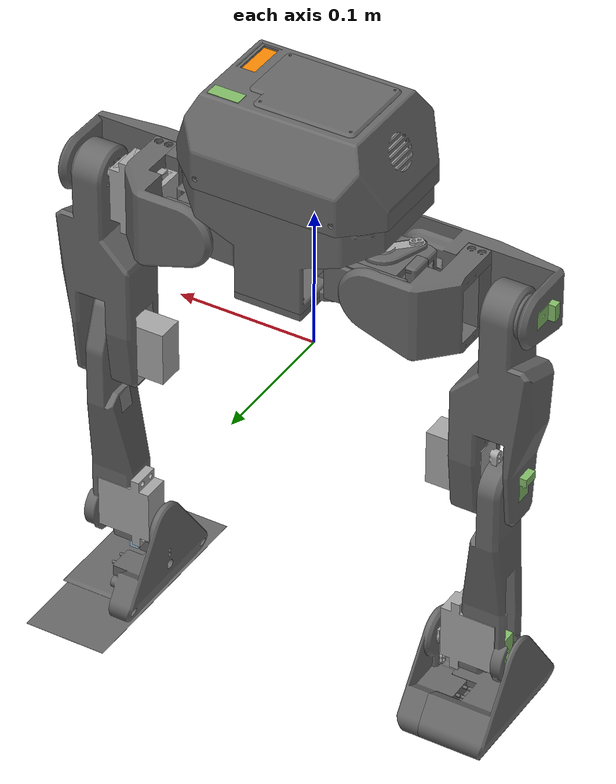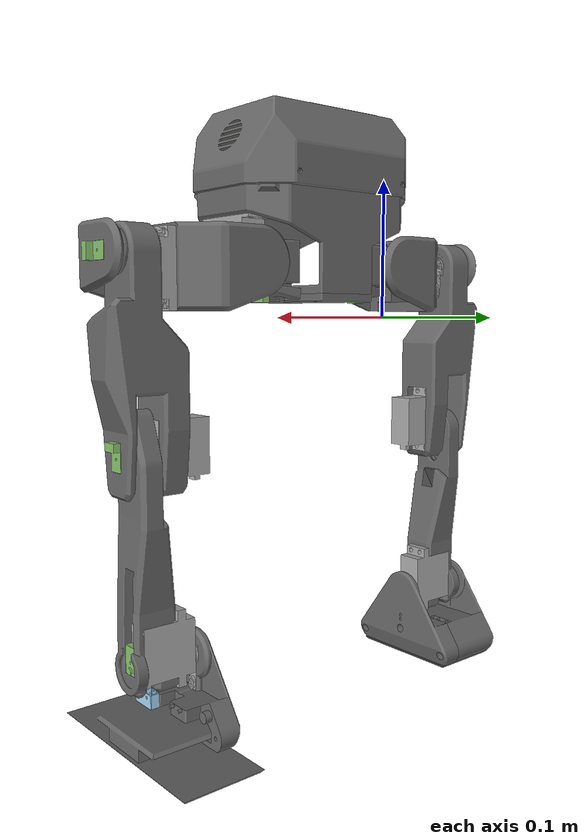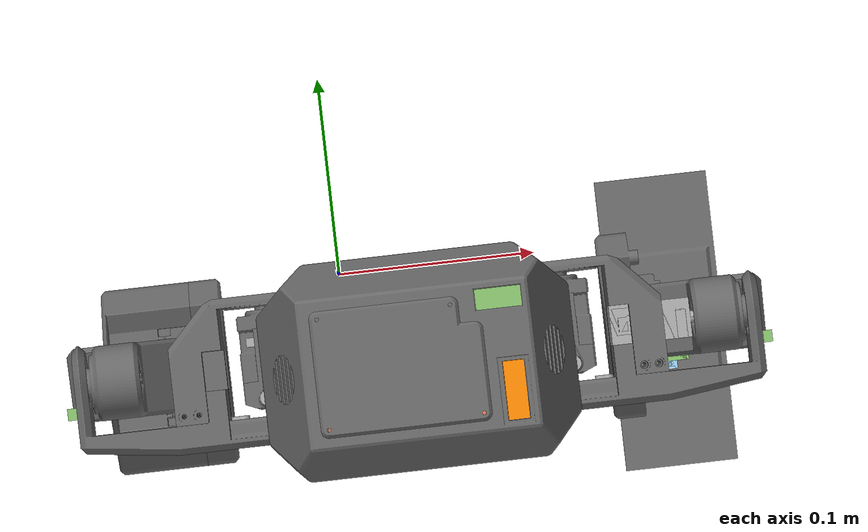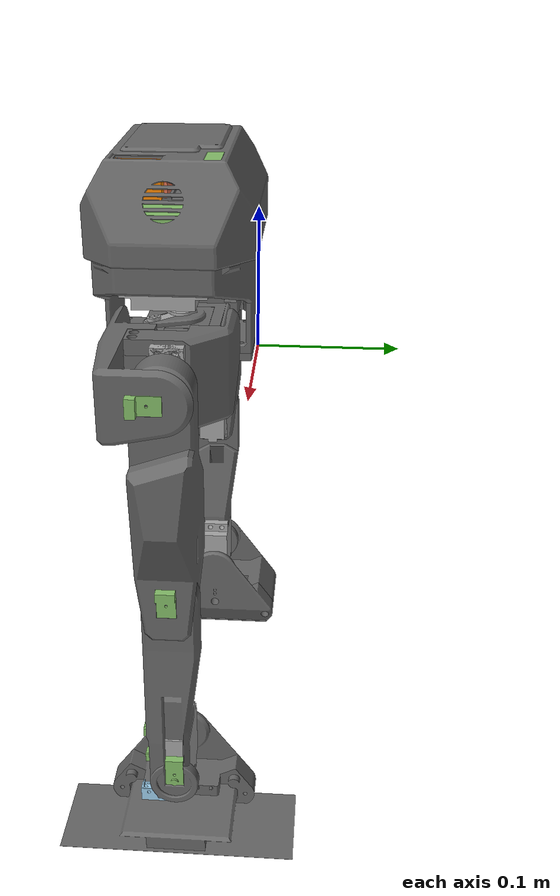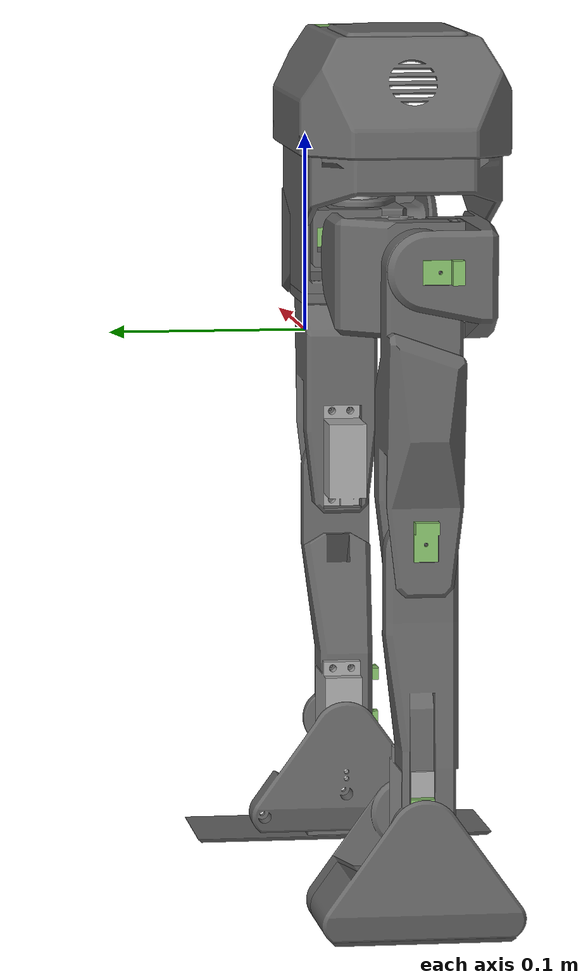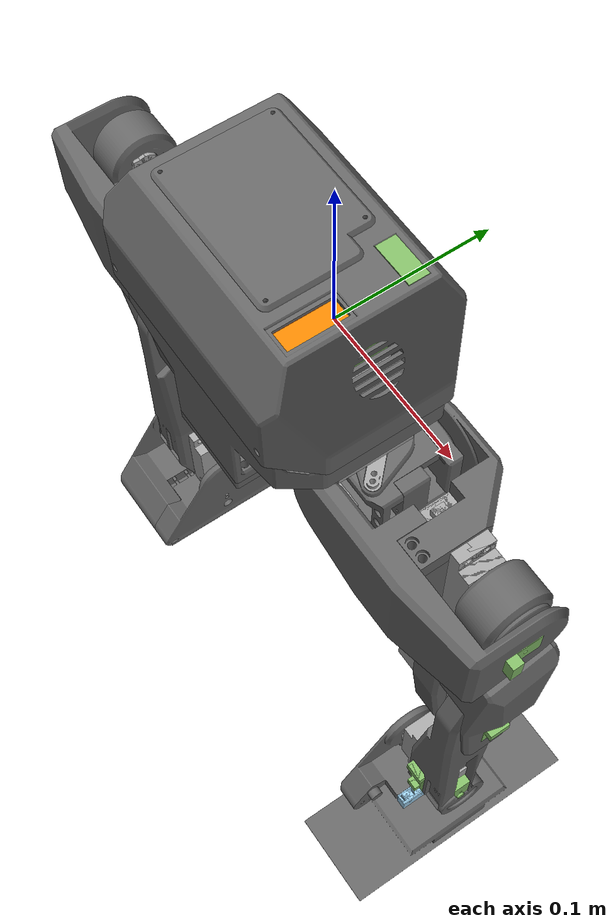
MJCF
<?xml version="1.0" ?>
<!-- Generated using onshape-to-robot -->
<!-- Onshape https://cad.onshape.com/documents/ab89b2c373e4ff9b58749bb8/w/4815c88dc60072332603f040/e/de3fa37f44c8b2e4be209b3b -->
<mujoco model="onshape_export">
  <compiler angle="radian" meshdir="assets" autolimits="true"/>
  <default>
    <default class="onshape_export">
      <joint frictionloss="0.1" armature="0.005"/>
      <position kp="50" dampratio="1"/>
      <default class="visual">
        <geom type="mesh" contype="0" conaffinity="0" group="2"/>
      </default>
      <default class="collision">
        <geom group="3"/>
      </default>
    </default>
  </default>
  <worldbody>
    <!-- Link head_base -->
    <body name="head_base" pos="0 0 0" quat="1 0 0 0" childclass="onshape_export">
      <inertial pos="0.0339288 -0.05351 0.0917777" mass="0.690656" fullinertia="0.00151742 0.00226472 0.00188638 -1.05099e-05 1.73196e-05 9.60235e-05"/>
      <!-- Part head_servo_left -->
      <geom type="mesh" class="visual" pos="0.0352673 -0.0419394 0.0175252" quat="1 -0 -0 0" mesh="head_servo_left" material="head_servo_left_material"/>
      <geom type="mesh" class="collision" pos="0.0352673 -0.0419394 0.0175252" quat="1 -0 -0 0" mesh="head_servo_left" material="head_servo_left_material"/>
      <!-- Part head_servo_right -->
      <geom type="mesh" class="visual" pos="0.0352673 -0.0419394 0.0175252" quat="1 -0 -0 -0" mesh="head_servo_right" material="head_servo_right_material"/>
      <geom type="mesh" class="collision" pos="0.0352673 -0.0419394 0.0175252" quat="1 -0 -0 -0" mesh="head_servo_right" material="head_servo_right_material"/>
      <!-- Part head_battery -->
      <geom type="mesh" class="visual" pos="0.0279055 -0.0414035 0.0161252" quat="1 0 0 0" mesh="head_battery" material="head_battery_material"/>
      <geom type="mesh" class="collision" pos="0.0279055 -0.0414035 0.0161252" quat="1 0 0 0" mesh="head_battery" material="head_battery_material"/>
      <!-- Part head_base -->
      <geom type="mesh" class="visual" pos="0.0352673 -0.0419394 0.0171252" quat="1 0 0 0" mesh="head_base" material="head_base_material"/>
      <geom type="mesh" class="collision" pos="0.0352673 -0.0419394 0.0171252" quat="1 0 0 0" mesh="head_base" material="head_base_material"/>
      <!-- Part head_fan -->
      <geom type="mesh" class="visual" pos="0.0357205 -0.0415894 0.0169139" quat="1 -0 -0 -0" mesh="head_fan" material="head_fan_material"/>
      <geom type="mesh" class="collision" pos="0.0357205 -0.0415894 0.0169139" quat="1 -0 -0 -0" mesh="head_fan" material="head_fan_material"/>
      <!-- Part head_r_sense_left -->
      <geom type="mesh" class="visual" pos="0.0352673 -0.0419394 0.0166252" quat="1 0 0 0" mesh="head_r_sense_left" material="head_r_sense_left_material"/>
      <geom type="mesh" class="collision" pos="0.0352673 -0.0419394 0.0166252" quat="1 0 0 0" mesh="head_r_sense_left" material="head_r_sense_left_material"/>
      <!-- Part head_midframe -->
      <geom type="mesh" class="visual" pos="0.0352673 -0.0419394 0.0171252" quat="1 0 0 0" mesh="head_midframe" material="head_midframe_material"/>
      <geom type="mesh" class="collision" pos="0.0352673 -0.0419394 0.0171252" quat="1 0 0 0" mesh="head_midframe" material="head_midframe_material"/>
      <!-- Part head_button -->
      <geom type="mesh" class="visual" pos="0.0352673 -0.0415894 0.0171252" quat="1 0 0 -0" mesh="head_button" material="head_button_material"/>
      <geom type="mesh" class="collision" pos="0.0352673 -0.0415894 0.0171252" quat="1 0 0 -0" mesh="head_button" material="head_button_material"/>
      <!-- Part head_main -->
      <geom type="mesh" class="visual" pos="0.0352673 -0.0419394 0.0171252" quat="1 0 0 0" mesh="head_main" material="head_main_material"/>
      <geom type="mesh" class="collision" pos="0.0352673 -0.0419394 0.0171252" quat="1 0 0 0" mesh="head_main" material="head_main_material"/>
      <!-- Part head_r_sense_right -->
      <geom type="mesh" class="visual" pos="0.0352673 -0.0419394 0.0166252" quat="1 0 0 0" mesh="head_r_sense_right" material="head_r_sense_right_material"/>
      <geom type="mesh" class="collision" pos="0.0352673 -0.0419394 0.0166252" quat="1 0 0 0" mesh="head_r_sense_right" material="head_r_sense_right_material"/>
      <!-- Part head_voltmeter -->
      <geom type="mesh" class="visual" pos="0.0352673 -0.0415894 0.0171252" quat="1 0 0 0" mesh="head_voltmeter" material="head_voltmeter_material"/>
      <geom type="mesh" class="collision" pos="0.0352673 -0.0415894 0.0171252" quat="1 0 0 0" mesh="head_voltmeter" material="head_voltmeter_material"/>
      <!-- Part head_powerboard -->
      <geom type="mesh" class="visual" pos="0.0352673 -0.0419394 0.0171252" quat="1 0 0 0" mesh="head_powerboard" material="head_powerboard_material"/>
      <geom type="mesh" class="collision" pos="0.0352673 -0.0419394 0.0171252" quat="1 0 0 0" mesh="head_powerboard" material="head_powerboard_material"/>
      <!-- Part head_lid -->
      <geom type="mesh" class="visual" pos="0.0352673 -0.0415894 0.0171252" quat="1 0 0 0" mesh="head_lid" material="head_lid_material"/>
      <geom type="mesh" class="collision" pos="0.0352673 -0.0415894 0.0171252" quat="1 0 0 0" mesh="head_lid" material="head_lid_material"/>
      <!-- Part head_r_pi -->
      <geom type="mesh" class="visual" pos="0.0352673 -0.0419394 0.0171252" quat="1 0 0 0" mesh="head_r_pi" material="head_r_pi_material"/>
      <geom type="mesh" class="collision" pos="0.0352673 -0.0419394 0.0171252" quat="1 0 0 0" mesh="head_r_pi" material="head_r_pi_material"/>
      <!-- Part head_top -->
      <geom type="mesh" class="visual" pos="0.0352673 -0.0415894 0.0171252" quat="1 0 0 0" mesh="head_top" material="head_top_material"/>
      <geom type="mesh" class="collision" pos="0.0352673 -0.0415894 0.0171252" quat="1 0 0 0" mesh="head_top" material="head_top_material"/>
      <!-- Link left_yoke_lower_frame -->
      <body name="left_yoke_lower_frame" pos="0.0962673 -0.0419394 0.0535752" quat="1 -0 0 -0">
        <!-- Joint from head_base to left_yoke_lower_frame -->
        <joint axis="0 0 1" name="head__left_yoke" type="hinge" range="-0.6108652381980153 0.6108652381980153"/>
        <inertial pos="-0.000324895 0.00112343 -0.01422" mass="0.111396" fullinertia="2.8549e-05 3.34805e-05 4.49837e-05 5.70742e-07 1.39543e-07 1.22214e-07"/>
        <!-- Part left_yoke_r_sense -->
        <geom type="mesh" class="visual" pos="-0.061 0.00015 -0.03575" quat="1 0 -0 -0" mesh="left_yoke_r_sense" material="left_yoke_r_sense_material"/>
        <geom type="mesh" class="collision" pos="-0.061 0.00015 -0.03575" quat="1 0 -0 -0" mesh="left_yoke_r_sense" material="left_yoke_r_sense_material"/>
        <!-- Part left_yoke_servo -->
        <geom type="mesh" class="visual" pos="-0.061 0.0001 -0.03575" quat="1 0 -0 -0" mesh="left_yoke_servo" material="left_yoke_servo_material"/>
        <geom type="mesh" class="collision" pos="-0.061 0.0001 -0.03575" quat="1 0 -0 -0" mesh="left_yoke_servo" material="left_yoke_servo_material"/>
        <!-- Part left_yoke_upper_frame -->
        <geom type="mesh" class="visual" pos="-0.061 0 -0.03575" quat="1 0 0 -0" mesh="left_yoke_upper_frame" material="left_yoke_upper_frame_material"/>
        <geom type="mesh" class="collision" pos="-0.061 0 -0.03575" quat="1 0 0 -0" mesh="left_yoke_upper_frame" material="left_yoke_upper_frame_material"/>
        <!-- Part head_servo_horn_left -->
        <geom type="mesh" class="visual" pos="-0.061 0 -0.03605" quat="1 0 0 0" mesh="head_servo_horn_left" material="head_servo_horn_left_material"/>
        <geom type="mesh" class="collision" pos="-0.061 0 -0.03605" quat="1 0 0 0" mesh="head_servo_horn_left" material="head_servo_horn_left_material"/>
        <!-- Part left_yoke_lower_frame -->
        <geom type="mesh" class="visual" pos="-0.061 0.00015 -0.03575" quat="1 0 -0 -0" mesh="left_yoke_lower_frame" material="left_yoke_lower_frame_material"/>
        <geom type="mesh" class="collision" pos="-0.061 0.00015 -0.03575" quat="1 0 -0 -0" mesh="left_yoke_lower_frame" material="left_yoke_lower_frame_material"/>
        <!-- Link left_hip_back -->
        <body name="left_hip_back" pos="0.01 -0.03 -0.0147" quat="0.707107 -0.707107 0 -0">
          <!-- Joint from left_yoke_lower_frame to left_hip_back -->
          <joint axis="0 0 1" name="left_yoke__hip" type="hinge" range="-0.69813170079773 0.3316125578789244"/>
          <inertial pos="0.0434863 0.00417704 0.0207139" mass="0.243657" fullinertia="0.000176751 0.000276896 0.000212579 3.57228e-06 2.8634e-05 -2.73023e-06"/>
          <!-- Part left_hip_back -->
          <geom type="mesh" class="visual" pos="-0.071 0.0213479 0.0304" quat="0.707107 0.707107 0 -0" mesh="left_hip_back" material="left_hip_back_material"/>
          <geom type="mesh" class="collision" pos="-0.071 0.0213479 0.0304" quat="0.707107 0.707107 0 -0" mesh="left_hip_back" material="left_hip_back_material"/>
          <!-- Part left_hip_servo -->
          <geom type="mesh" class="visual" pos="-0.071 0.0213479 0.0304" quat="0.707107 0.707107 0 -0" mesh="left_hip_servo" material="left_hip_servo_material"/>
          <geom type="mesh" class="collision" pos="-0.071 0.0213479 0.0304" quat="0.707107 0.707107 0 -0" mesh="left_hip_servo" material="left_hip_servo_material"/>
          <!-- Part left_yoke_servo_horn -->
          <geom type="mesh" class="visual" pos="-0.071 0.02105 0.0301" quat="0.707107 0.707107 0 -0" mesh="left_yoke_servo_horn" material="left_yoke_servo_horn_material"/>
          <geom type="mesh" class="collision" pos="-0.071 0.02105 0.0301" quat="0.707107 0.707107 0 -0" mesh="left_yoke_servo_horn" material="left_yoke_servo_horn_material"/>
          <!-- Part left_hip_r_sense -->
          <geom type="mesh" class="visual" pos="-0.0722 0.02105 0.0304" quat="0.707107 0.707107 0 -0" mesh="left_hip_r_sense" material="left_hip_r_sense_material"/>
          <geom type="mesh" class="collision" pos="-0.0722 0.02105 0.0304" quat="0.707107 0.707107 0 -0" mesh="left_hip_r_sense" material="left_hip_r_sense_material"/>
          <!-- Part left_hip_front -->
          <geom type="mesh" class="visual" pos="-0.071 0.02105 0.0304" quat="0.707107 0.707107 0 -0" mesh="left_hip_front" material="left_hip_front_material"/>
          <geom type="mesh" class="collision" pos="-0.071 0.02105 0.0304" quat="0.707107 0.707107 0 -0" mesh="left_hip_front" material="left_hip_front_material"/>
          <!-- Link left_upper_leg -->
          <body name="left_upper_leg" pos="0.0755 -0.00365213 0.0301319" quat="0.707107 0 -0.707107 -0">
            <!-- Joint from left_hip_back to left_upper_leg -->
            <joint axis="0 0 1" name="left_hip__upper_leg" type="hinge" range="-1.5707963267948921 4.440892098500626e-15"/>
            <inertial pos="9.02068e-05 0.0782933 0.00251966" mass="0.300155" fullinertia="0.000695559 0.000131044 0.000625592 1.11835e-06 7.08851e-07 -0.000123921"/>
            <!-- Part left_upper_leg_r_sense -->
            <geom type="mesh" class="visual" pos="0.000268125 0.025 0.1476" quat="0.5 0.5 0.5 -0.5" mesh="left_upper_leg_r_sense" material="left_upper_leg_r_sense_material"/>
            <geom type="mesh" class="collision" pos="0.000268125 0.025 0.1476" quat="0.5 0.5 0.5 -0.5" mesh="left_upper_leg_r_sense" material="left_upper_leg_r_sense_material"/>
            <!-- Part left_upper_leg -->
            <geom type="mesh" class="visual" pos="0.000268125 0.025 0.1468" quat="0.5 0.5 0.5 -0.5" mesh="left_upper_leg" material="left_upper_leg_material"/>
            <geom type="mesh" class="collision" pos="0.000268125 0.025 0.1468" quat="0.5 0.5 0.5 -0.5" mesh="left_upper_leg" material="left_upper_leg_material"/>
            <!-- Part left_upper_leg_servo -->
            <geom type="mesh" class="visual" pos="0.000268125 0.025 0.1468" quat="0.5 0.5 0.5 -0.5" mesh="left_upper_leg_servo" material="left_upper_leg_servo_material"/>
            <geom type="mesh" class="collision" pos="0.000268125 0.025 0.1468" quat="0.5 0.5 0.5 -0.5" mesh="left_upper_leg_servo" material="left_upper_leg_servo_material"/>
            <!-- Part left_hip_servo_horn -->
            <geom type="mesh" class="visual" pos="0.000268125 0.025 0.1465" quat="0.5 0.5 0.5 -0.5" mesh="left_hip_servo_horn" material="left_hip_servo_horn_material"/>
            <geom type="mesh" class="collision" pos="0.000268125 0.025 0.1465" quat="0.5 0.5 0.5 -0.5" mesh="left_hip_servo_horn" material="left_hip_servo_horn_material"/>
            <!-- Link left_lower_leg -->
            <body name="left_lower_leg" pos="0 0.14 -0.0021" quat="1 -0 -0 -0">
              <!-- Joint from left_upper_leg to left_lower_leg -->
              <joint axis="0 0 1" name="left_upper_leg__lower_leg" type="hinge" range="-0.17453292519943206 2.181661564992913"/>
              <inertial pos="-0.00150033 0.0846327 0.00581041" mass="0.183721" fullinertia="0.000503681 3.69807e-05 0.000494006 5.24054e-06 -3.90634e-07 -4.84047e-05"/>
              <!-- Part left_lower_leg_servo -->
              <geom type="mesh" class="visual" pos="0.000268125 -0.115 0.1492" quat="0.5 0.5 0.5 -0.5" mesh="left_lower_leg_servo" material="left_lower_leg_servo_material"/>
              <geom type="mesh" class="collision" pos="0.000268125 -0.115 0.1492" quat="0.5 0.5 0.5 -0.5" mesh="left_lower_leg_servo" material="left_lower_leg_servo_material"/>
              <!-- Part left_upper_leg_servo_horn -->
              <geom type="mesh" class="visual" pos="0.000268125 -0.115 0.1489" quat="0.5 0.5 0.5 -0.5" mesh="left_upper_leg_servo_horn" material="left_upper_leg_servo_horn_material"/>
              <geom type="mesh" class="collision" pos="0.000268125 -0.115 0.1489" quat="0.5 0.5 0.5 -0.5" mesh="left_upper_leg_servo_horn" material="left_upper_leg_servo_horn_material"/>
              <!-- Part left_lower_leg -->
              <geom type="mesh" class="visual" pos="0.000268125 -0.115 0.1492" quat="0.5 0.5 0.5 -0.5" mesh="left_lower_leg" material="left_lower_leg_material"/>
              <geom type="mesh" class="collision" pos="0.000268125 -0.115 0.1492" quat="0.5 0.5 0.5 -0.5" mesh="left_lower_leg" material="left_lower_leg_material"/>
              <!-- Part left_lower_leg_c_sense_1 -->
              <geom type="mesh" class="visual" pos="0.000968125 -0.115 0.1492" quat="0.5 0.5 0.5 -0.5" mesh="left_lower_leg_c_sense_1" material="left_lower_leg_c_sense_1_material"/>
              <geom type="mesh" class="collision" pos="0.000968125 -0.115 0.1492" quat="0.5 0.5 0.5 -0.5" mesh="left_lower_leg_c_sense_1" material="left_lower_leg_c_sense_1_material"/>
              <!-- Part left_lower_leg_c_sense_2 -->
              <geom type="mesh" class="visual" pos="0.000968125 -0.115 0.1492" quat="0.5 0.5 0.5 -0.5" mesh="left_lower_leg_c_sense_2" material="left_lower_leg_c_sense_2_material"/>
              <geom type="mesh" class="collision" pos="0.000968125 -0.115 0.1492" quat="0.5 0.5 0.5 -0.5" mesh="left_lower_leg_c_sense_2" material="left_lower_leg_c_sense_2_material"/>
              <!-- Part left_lower_leg_r_sense -->
              <geom type="mesh" class="visual" pos="0.000268125 -0.115 0.1492" quat="0.5 0.5 0.5 -0.5" mesh="left_lower_leg_r_sense" material="left_lower_leg_r_sense_material"/>
              <geom type="mesh" class="collision" pos="0.000268125 -0.115 0.1492" quat="0.5 0.5 0.5 -0.5" mesh="left_lower_leg_r_sense" material="left_lower_leg_r_sense_material"/>
              <!-- Link left_foot_base -->
              <body name="left_foot_base" pos="-0 0.14 0.0426" quat="0 -1 0 -0">
                <!-- Joint from left_lower_leg to left_foot_base -->
                <joint axis="0 0 1" name="left_lower_leg__foot" type="hinge" range="-1.396263401595453 1.3962634015954742"/>
                <inertial pos="1.25698e-05 -0.0368179 0.0309956" mass="0.184808" fullinertia="0.000114312 0.000223924 0.000180591 -2.246e-08 5.529e-09 1.38678e-06"/>
                <!-- Part left_foot_limit_switch_1 -->
                <geom type="mesh" class="visual" pos="0.000268125 0.255 -0.1063" quat="0.5 -0.5 -0.5 -0.5" mesh="left_foot_limit_switch_1" material="left_foot_limit_switch_1_material"/>
                <geom type="mesh" class="collision" pos="0.000268125 0.255 -0.1063" quat="0.5 -0.5 -0.5 -0.5" mesh="left_foot_limit_switch_1" material="left_foot_limit_switch_1_material"/>
                <!-- Part left_foot_base -->
                <geom type="mesh" class="visual" pos="0.000268105 0.258024 -0.106099" quat="0.5 -0.5 -0.5 -0.5" mesh="left_foot_base" material="left_foot_base_material"/>
                <geom type="mesh" class="collision" pos="0.000268105 0.258024 -0.106099" quat="0.5 -0.5 -0.5 -0.5" mesh="left_foot_base" material="left_foot_base_material"/>
                <!-- Part left_foot_right_side -->
                <geom type="mesh" class="visual" pos="0.000268125 0.255 -0.1063" quat="0.5 -0.5 -0.5 -0.5" mesh="left_foot_right_side" material="left_foot_right_side_material"/>
                <geom type="mesh" class="collision" pos="0.000268125 0.255 -0.1063" quat="0.5 -0.5 -0.5 -0.5" mesh="left_foot_right_side" material="left_foot_right_side_material"/>
                <!-- Part left_foot_limit_switch_2 -->
                <geom type="mesh" class="visual" pos="0.000268125 0.255 -0.1063" quat="0.5 -0.5 -0.5 -0.5" mesh="left_foot_limit_switch_2" material="left_foot_limit_switch_2_material"/>
                <geom type="mesh" class="collision" pos="0.000268125 0.255 -0.1063" quat="0.5 -0.5 -0.5 -0.5" mesh="left_foot_limit_switch_2" material="left_foot_limit_switch_2_material"/>
                <!-- Part left_lower_leg_servo_horn -->
                <geom type="mesh" class="visual" pos="0.000268125 0.255 -0.1066" quat="0.5 -0.5 -0.5 -0.5" mesh="left_lower_leg_servo_horn" material="left_lower_leg_servo_horn_material"/>
                <geom type="mesh" class="collision" pos="0.000268125 0.255 -0.1066" quat="0.5 -0.5 -0.5 -0.5" mesh="left_lower_leg_servo_horn" material="left_lower_leg_servo_horn_material"/>
                <!-- Part left_foot_left_side -->
                <geom type="mesh" class="visual" pos="0.000268125 0.255 -0.1063" quat="0.5 -0.5 -0.5 -0.5" mesh="left_foot_left_side" material="left_foot_left_side_material"/>
                <geom type="mesh" class="collision" pos="0.000268125 0.255 -0.1063" quat="0.5 -0.5 -0.5 -0.5" mesh="left_foot_left_side" material="left_foot_left_side_material"/>
                <!-- Frame forward_left_c_sense -->
                <site group="3" name="forward_left_c_sense" pos="-0.026 -0.0551653 0.0310006" quat="0.5 0.5 -0.5 0.5"/>
                <!-- Frame back_left_c_sense -->
                <site group="3" name="back_left_c_sense" pos="0.026 -0.0551653 0.0310006" quat="0.5 0.5 -0.5 0.5"/>
              </body>
            </body>
          </body>
        </body>
      </body>
      <!-- Link right_yoke_lower_frame -->
      <body name="right_yoke_lower_frame" pos="-0.0257327 -0.0419394 0.0535752" quat="1 -0 -0 -0">
        <!-- Joint from head_base to right_yoke_lower_frame -->
        <joint axis="0 0 1" name="head__right_yoke" type="hinge" range="-0.6108652381980153 0.6108652381980153"/>
        <inertial pos="0.000324896 0.00109651 -0.01422" mass="0.111396" fullinertia="2.85697e-05 3.34805e-05 4.50044e-05 -5.72187e-07 -1.39545e-07 1.20774e-07"/>
        <!-- Part head_servo_horn_right -->
        <geom type="mesh" class="visual" pos="0.061 0 -0.03605" quat="1 0 0 0" mesh="head_servo_horn_right" material="head_servo_horn_right_material"/>
        <geom type="mesh" class="collision" pos="0.061 0 -0.03605" quat="1 0 0 0" mesh="head_servo_horn_right" material="head_servo_horn_right_material"/>
        <!-- Part right_yoke_r_sense -->
        <geom type="mesh" class="visual" pos="0.061 0.00015 -0.03575" quat="1 0 0 0" mesh="right_yoke_r_sense" material="right_yoke_r_sense_material"/>
        <geom type="mesh" class="collision" pos="0.061 0.00015 -0.03575" quat="1 0 0 0" mesh="right_yoke_r_sense" material="right_yoke_r_sense_material"/>
        <!-- Part right_yoke_lower_frame -->
        <geom type="mesh" class="visual" pos="0.061 0.00015 -0.03575" quat="1 0 -0 0" mesh="right_yoke_lower_frame" material="right_yoke_lower_frame_material"/>
        <geom type="mesh" class="collision" pos="0.061 0.00015 -0.03575" quat="1 0 -0 0" mesh="right_yoke_lower_frame" material="right_yoke_lower_frame_material"/>
        <!-- Part right_yoke_servo -->
        <geom type="mesh" class="visual" pos="0.061 5e-05 -0.03575" quat="1 0 -0 0" mesh="right_yoke_servo" material="right_yoke_servo_material"/>
        <geom type="mesh" class="collision" pos="0.061 5e-05 -0.03575" quat="1 0 -0 0" mesh="right_yoke_servo" material="right_yoke_servo_material"/>
        <!-- Part right_yoke_upper_frame -->
        <geom type="mesh" class="visual" pos="0.061 0 -0.03575" quat="1 0 0 0" mesh="right_yoke_upper_frame" material="right_yoke_upper_frame_material"/>
        <geom type="mesh" class="collision" pos="0.061 0 -0.03575" quat="1 0 0 0" mesh="right_yoke_upper_frame" material="right_yoke_upper_frame_material"/>
        <!-- Link right_hip_back -->
        <body name="right_hip_back" pos="-0.01 -0.03005 -0.0147" quat="0.707107 -0.707107 -0 0">
          <!-- Joint from right_yoke_lower_frame to right_hip_back -->
          <joint axis="0 0 1" name="right_yoke__hip" type="hinge" range="-0.33161255787892263 0.6981317007977318"/>
          <inertial pos="-0.0434863 0.00417704 0.0207139" mass="0.243657" fullinertia="0.000176751 0.000276896 0.000212579 -3.57228e-06 -2.8634e-05 -2.73023e-06"/>
          <!-- Part right_yoke_servo_horn -->
          <geom type="mesh" class="visual" pos="0.071 0.02105 0.0301" quat="0.707107 0.707107 0 -0" mesh="right_yoke_servo_horn" material="right_yoke_servo_horn_material"/>
          <geom type="mesh" class="collision" pos="0.071 0.02105 0.0301" quat="0.707107 0.707107 0 -0" mesh="right_yoke_servo_horn" material="right_yoke_servo_horn_material"/>
          <!-- Part right_hip_front -->
          <geom type="mesh" class="visual" pos="0.071 0.02105 0.0304" quat="0.707107 0.707107 0 -0" mesh="right_hip_front" material="right_hip_front_material"/>
          <geom type="mesh" class="collision" pos="0.071 0.02105 0.0304" quat="0.707107 0.707107 0 -0" mesh="right_hip_front" material="right_hip_front_material"/>
          <!-- Part right_hip_back -->
          <geom type="mesh" class="visual" pos="0.071 0.0213479 0.0304" quat="0.707107 0.707107 0 -0" mesh="right_hip_back" material="right_hip_back_material"/>
          <geom type="mesh" class="collision" pos="0.071 0.0213479 0.0304" quat="0.707107 0.707107 0 -0" mesh="right_hip_back" material="right_hip_back_material"/>
          <!-- Part right_hip_r_sense -->
          <geom type="mesh" class="visual" pos="0.0722 0.02105 0.0304" quat="0.707107 0.707107 0 0" mesh="right_hip_r_sense" material="right_hip_r_sense_material"/>
          <geom type="mesh" class="collision" pos="0.0722 0.02105 0.0304" quat="0.707107 0.707107 0 0" mesh="right_hip_r_sense" material="right_hip_r_sense_material"/>
          <!-- Part right_hip_servo -->
          <geom type="mesh" class="visual" pos="0.071 0.0213479 0.0304" quat="0.707107 0.707107 0 -0" mesh="right_hip_servo" material="right_hip_servo_material"/>
          <geom type="mesh" class="collision" pos="0.071 0.0213479 0.0304" quat="0.707107 0.707107 0 -0" mesh="right_hip_servo" material="right_hip_servo_material"/>
          <!-- Link right_upper_leg -->
          <body name="right_upper_leg" pos="-0.0755 -0.00365213 0.0301319" quat="0 -0.707107 0 -0.707107">
            <!-- Joint from right_hip_back to right_upper_leg -->
            <joint axis="0 0 1" name="right_hip__upper_leg" type="hinge" range="0.0 1.5707963267948966"/>
            <inertial pos="9.02069e-05 -0.0782933 0.00251966" mass="0.300155" fullinertia="0.000695559 0.000131044 0.000625592 -1.11835e-06 7.08851e-07 0.000123921"/>
            <!-- Part right_hip_servo_horn -->
            <geom type="mesh" class="visual" pos="0.000268125 -0.025 0.1465" quat="0.5 -0.5 -0.5 -0.5" mesh="right_hip_servo_horn" material="right_hip_servo_horn_material"/>
            <geom type="mesh" class="collision" pos="0.000268125 -0.025 0.1465" quat="0.5 -0.5 -0.5 -0.5" mesh="right_hip_servo_horn" material="right_hip_servo_horn_material"/>
            <!-- Part right_upper_leg_servo -->
            <geom type="mesh" class="visual" pos="0.000268125 -0.025 0.1468" quat="0.5 -0.5 -0.5 -0.5" mesh="right_upper_leg_servo" material="right_upper_leg_servo_material"/>
            <geom type="mesh" class="collision" pos="0.000268125 -0.025 0.1468" quat="0.5 -0.5 -0.5 -0.5" mesh="right_upper_leg_servo" material="right_upper_leg_servo_material"/>
            <!-- Part right_upper_leg -->
            <geom type="mesh" class="visual" pos="0.000268125 -0.025 0.1468" quat="0.5 -0.5 -0.5 -0.5" mesh="right_upper_leg" material="right_upper_leg_material"/>
            <geom type="mesh" class="collision" pos="0.000268125 -0.025 0.1468" quat="0.5 -0.5 -0.5 -0.5" mesh="right_upper_leg" material="right_upper_leg_material"/>
            <!-- Part right_upper_leg_r_sense -->
            <geom type="mesh" class="visual" pos="0.000268125 -0.025 0.1476" quat="0.5 -0.5 -0.5 -0.5" mesh="right_upper_leg_r_sense" material="right_upper_leg_r_sense_material"/>
            <geom type="mesh" class="collision" pos="0.000268125 -0.025 0.1476" quat="0.5 -0.5 -0.5 -0.5" mesh="right_upper_leg_r_sense" material="right_upper_leg_r_sense_material"/>
            <!-- Link right_lower_leg -->
            <body name="right_lower_leg" pos="-0 -0.14 -0.0021" quat="1 -0 0 -0">
              <!-- Joint from right_upper_leg to right_lower_leg -->
              <joint axis="0 0 1" name="right_upper_leg__lower_leg" type="hinge" range="-2.181661564992912 0.17453292519943295"/>
              <inertial pos="-0.00150033 -0.0846327 0.00581041" mass="0.183721" fullinertia="0.000503681 3.69807e-05 0.000494006 -5.24056e-06 -3.90634e-07 4.84047e-05"/>
              <!-- Part right_lower_leg_r_sense -->
              <geom type="mesh" class="visual" pos="0.000268125 0.115 0.1492" quat="0.5 -0.5 -0.5 -0.5" mesh="right_lower_leg_r_sense" material="right_lower_leg_r_sense_material"/>
              <geom type="mesh" class="collision" pos="0.000268125 0.115 0.1492" quat="0.5 -0.5 -0.5 -0.5" mesh="right_lower_leg_r_sense" material="right_lower_leg_r_sense_material"/>
              <!-- Part right_lower_leg_c_sense_2 -->
              <geom type="mesh" class="visual" pos="0.000968125 0.115 0.1492" quat="0.5 -0.5 -0.5 -0.5" mesh="right_lower_leg_c_sense_2" material="right_lower_leg_c_sense_2_material"/>
              <geom type="mesh" class="collision" pos="0.000968125 0.115 0.1492" quat="0.5 -0.5 -0.5 -0.5" mesh="right_lower_leg_c_sense_2" material="right_lower_leg_c_sense_2_material"/>
              <!-- Part right_lower_leg -->
              <geom type="mesh" class="visual" pos="0.000268125 0.115 0.1492" quat="0.5 -0.5 -0.5 -0.5" mesh="right_lower_leg" material="right_lower_leg_material"/>
              <geom type="mesh" class="collision" pos="0.000268125 0.115 0.1492" quat="0.5 -0.5 -0.5 -0.5" mesh="right_lower_leg" material="right_lower_leg_material"/>
              <!-- Part right_upper_leg_servo_horn -->
              <geom type="mesh" class="visual" pos="0.000268125 0.115 0.1489" quat="0.5 -0.5 -0.5 -0.5" mesh="right_upper_leg_servo_horn" material="right_upper_leg_servo_horn_material"/>
              <geom type="mesh" class="collision" pos="0.000268125 0.115 0.1489" quat="0.5 -0.5 -0.5 -0.5" mesh="right_upper_leg_servo_horn" material="right_upper_leg_servo_horn_material"/>
              <!-- Part right_lower_leg_servo -->
              <geom type="mesh" class="visual" pos="0.000268125 0.115 0.1492" quat="0.5 -0.5 -0.5 -0.5" mesh="right_lower_leg_servo" material="right_lower_leg_servo_material"/>
              <geom type="mesh" class="collision" pos="0.000268125 0.115 0.1492" quat="0.5 -0.5 -0.5 -0.5" mesh="right_lower_leg_servo" material="right_lower_leg_servo_material"/>
              <!-- Part right_lower_leg_c_sense_1 -->
              <geom type="mesh" class="visual" pos="0.000968125 0.115 0.1492" quat="0.5 -0.5 -0.5 -0.5" mesh="right_lower_leg_c_sense_1" material="right_lower_leg_c_sense_1_material"/>
              <geom type="mesh" class="collision" pos="0.000968125 0.115 0.1492" quat="0.5 -0.5 -0.5 -0.5" mesh="right_lower_leg_c_sense_1" material="right_lower_leg_c_sense_1_material"/>
              <!-- Link right_foot_base -->
              <body name="right_foot_base" pos="0 -0.14 0.0426" quat="0 1 0 -0">
                <!-- Joint from right_lower_leg to right_foot_base -->
                <joint axis="0 0 1" name="right_lower_leg__foot" type="hinge" range="-1.3962634015954636 1.3962634015954636"/>
                <inertial pos="1.25758e-05 0.036818 0.0308985" mass="0.184808" fullinertia="0.000114318 0.00022393 0.000180591 2.2414e-08 5.457e-09 -1.1554e-06"/>
                <!-- Part right_lower_leg_servo_horn -->
                <geom type="mesh" class="visual" pos="0.000268125 -0.255 -0.1066" quat="0.5 0.5 0.5 -0.5" mesh="right_lower_leg_servo_horn" material="right_lower_leg_servo_horn_material"/>
                <geom type="mesh" class="collision" pos="0.000268125 -0.255 -0.1066" quat="0.5 0.5 0.5 -0.5" mesh="right_lower_leg_servo_horn" material="right_lower_leg_servo_horn_material"/>
                <!-- Part right_foot_right_side -->
                <geom type="mesh" class="visual" pos="0.000268125 -0.255 -0.1063" quat="0.5 0.5 0.5 -0.5" mesh="right_foot_right_side" material="right_foot_right_side_material"/>
                <geom type="mesh" class="collision" pos="0.000268125 -0.255 -0.1063" quat="0.5 0.5 0.5 -0.5" mesh="right_foot_right_side" material="right_foot_right_side_material"/>
                <!-- Part right_foot_left_side -->
                <geom type="mesh" class="visual" pos="0.000268125 -0.255 -0.1063" quat="0.5 0.5 0.5 -0.5" mesh="right_foot_left_side" material="right_foot_left_side_material"/>
                <geom type="mesh" class="collision" pos="0.000268125 -0.255 -0.1063" quat="0.5 0.5 0.5 -0.5" mesh="right_foot_left_side" material="right_foot_left_side_material"/>
                <!-- Part right_foot_limit_switch_2 -->
                <geom type="mesh" class="visual" pos="0.000268125 -0.255 -0.1063" quat="0.5 0.5 0.5 -0.5" mesh="right_foot_limit_switch_2" material="right_foot_limit_switch_2_material"/>
                <geom type="mesh" class="collision" pos="0.000268125 -0.255 -0.1063" quat="0.5 0.5 0.5 -0.5" mesh="right_foot_limit_switch_2" material="right_foot_limit_switch_2_material"/>
                <!-- Part right_foot_base -->
                <geom type="mesh" class="visual" pos="0.000268113 -0.258024 -0.106501" quat="0.5 0.5 0.5 -0.5" mesh="right_foot_base" material="right_foot_base_material"/>
                <geom type="mesh" class="collision" pos="0.000268113 -0.258024 -0.106501" quat="0.5 0.5 0.5 -0.5" mesh="right_foot_base" material="right_foot_base_material"/>
                <!-- Part right_foot_limit_switch_1 -->
                <geom type="mesh" class="visual" pos="0.000268125 -0.255 -0.1063" quat="0.5 0.5 0.5 -0.5" mesh="right_foot_limit_switch_1" material="right_foot_limit_switch_1_material"/>
                <geom type="mesh" class="collision" pos="0.000268125 -0.255 -0.1063" quat="0.5 0.5 0.5 -0.5" mesh="right_foot_limit_switch_1" material="right_foot_limit_switch_1_material"/>
                <!-- Frame forward_right_c_sense -->
                <site group="3" name="forward_right_c_sense" pos="-0.026 0.0551653 0.0305994" quat="0.5 -0.5 0.5 0.5"/>
                <!-- Frame back_right_c_sense -->
                <site group="3" name="back_right_c_sense" pos="0.026 0.0551653 0.0305994" quat="0.5 -0.5 0.5 0.5"/>
              </body>
            </body>
          </body>
        </body>
      </body>
    </body>
  </worldbody>
  <asset>
    <mesh file="left_yoke_servo.stl"/>
    <mesh file="right_hip_front.stl"/>
    <mesh file="right_yoke_servo_horn.stl"/>
    <mesh file="left_lower_leg_c_sense_1.stl"/>
    <mesh file="left_lower_leg_c_sense_2.stl"/>
    <mesh file="left_yoke_r_sense.stl"/>
    <mesh file="left_lower_leg_servo_horn.stl"/>
    <mesh file="left_upper_leg_servo.stl"/>
    <mesh file="right_lower_leg_servo.stl"/>
    <mesh file="head_r_sense_left.stl"/>
    <mesh file="right_foot_limit_switch_2.stl"/>
    <mesh file="right_yoke_r_sense.stl"/>
    <mesh file="left_upper_leg_servo_horn.stl"/>
    <mesh file="head_r_sense_right.stl"/>
    <mesh file="head_r_pi.stl"/>
    <mesh file="left_hip_servo_horn.stl"/>
    <mesh file="head_lid.stl"/>
    <mesh file="head_servo_right.stl"/>
    <mesh file="left_lower_leg_servo.stl"/>
    <mesh file="head_voltmeter.stl"/>
    <mesh file="left_lower_leg_r_sense.stl"/>
    <mesh file="head_button.stl"/>
    <mesh file="left_foot_base.stl"/>
    <mesh file="right_upper_leg.stl"/>
    <mesh file="left_foot_limit_switch_1.stl"/>
    <mesh file="head_base.stl"/>
    <mesh file="right_hip_back.stl"/>
    <mesh file="head_battery.stl"/>
    <mesh file="right_upper_leg_r_sense.stl"/>
    <mesh file="right_hip_servo.stl"/>
    <mesh file="head_fan.stl"/>
    <mesh file="left_yoke_upper_frame.stl"/>
    <mesh file="left_hip_back.stl"/>
    <mesh file="right_foot_left_side.stl"/>
    <mesh file="left_yoke_servo_horn.stl"/>
    <mesh file="left_hip_front.stl"/>
    <mesh file="left_upper_leg.stl"/>
    <mesh file="right_upper_leg_servo.stl"/>
    <mesh file="head_midframe.stl"/>
    <mesh file="left_upper_leg_r_sense.stl"/>
    <mesh file="right_lower_leg_c_sense_1.stl"/>
    <mesh file="right_hip_servo_horn.stl"/>
    <mesh file="right_upper_leg_servo_horn.stl"/>
    <mesh file="head_main.stl"/>
    <mesh file="right_foot_limit_switch_1.stl"/>
    <mesh file="right_yoke_servo.stl"/>
    <mesh file="left_foot_right_side.stl"/>
    <mesh file="right_lower_leg.stl"/>
    <mesh file="head_top.stl"/>
    <mesh file="head_servo_horn_left.stl"/>
    <mesh file="left_hip_r_sense.stl"/>
    <mesh file="right_lower_leg_servo_horn.stl"/>
    <mesh file="left_lower_leg.stl"/>
    <mesh file="left_foot_limit_switch_2.stl"/>
    <mesh file="right_hip_r_sense.stl"/>
    <mesh file="head_servo_left.stl"/>
    <mesh file="left_yoke_lower_frame.stl"/>
    <mesh file="right_yoke_lower_frame.stl"/>
    <mesh file="right_yoke_upper_frame.stl"/>
    <mesh file="right_lower_leg_r_sense.stl"/>
    <mesh file="right_foot_right_side.stl"/>
    <mesh file="right_foot_base.stl"/>
    <mesh file="right_lower_leg_c_sense_2.stl"/>
    <mesh file="left_foot_left_side.stl"/>
    <mesh file="left_hip_servo.stl"/>
    <mesh file="head_servo_horn_right.stl"/>
    <mesh file="head_powerboard.stl"/>
    <material name="head_servo_left_material" rgba="0.647059 0.647059 0.647059 1"/>
    <material name="head_servo_right_material" rgba="0.647059 0.647059 0.647059 1"/>
    <material name="head_battery_material" rgba="0.87451 0.447059 0.317647 1"/>
    <material name="head_base_material" rgba="0.4 0.4 0.4 1"/>
    <material name="head_fan_material" rgba="0.917647 0.917647 0.917647 1"/>
    <material name="head_r_sense_left_material" rgba="0.513725 0.737255 0.407843 1"/>
    <material name="head_midframe_material" rgba="0.4 0.4 0.4 1"/>
    <material name="head_button_material" rgba="0.972549 0.529412 0.00392157 1"/>
    <material name="head_main_material" rgba="0.4 0.4 0.4 1"/>
    <material name="head_r_sense_right_material" rgba="0.513725 0.737255 0.407843 1"/>
    <material name="head_voltmeter_material" rgba="0.513725 0.737255 0.407843 1"/>
    <material name="head_powerboard_material" rgba="0.513725 0.737255 0.407843 1"/>
    <material name="head_lid_material" rgba="0.4 0.4 0.4 1"/>
    <material name="head_r_pi_material" rgba="0.513725 0.737255 0.407843 1"/>
    <material name="head_top_material" rgba="0.4 0.4 0.4 1"/>
    <material name="left_yoke_r_sense_material" rgba="0.513725 0.737255 0.407843 1"/>
    <material name="left_yoke_servo_material" rgba="0.647059 0.647059 0.647059 1"/>
    <material name="left_yoke_upper_frame_material" rgba="0.4 0.4 0.4 1"/>
    <material name="head_servo_horn_left_material" rgba="0.647059 0.647059 0.647059 1"/>
    <material name="left_yoke_lower_frame_material" rgba="0.4 0.4 0.4 1"/>
    <material name="left_hip_back_material" rgba="0.4 0.4 0.4 1"/>
    <material name="left_hip_servo_material" rgba="0.647059 0.647059 0.647059 1"/>
    <material name="left_yoke_servo_horn_material" rgba="0.647059 0.647059 0.647059 1"/>
    <material name="left_hip_r_sense_material" rgba="0.513725 0.737255 0.407843 1"/>
    <material name="left_hip_front_material" rgba="0.4 0.4 0.4 1"/>
    <material name="left_upper_leg_r_sense_material" rgba="0.513725 0.737255 0.407843 1"/>
    <material name="left_upper_leg_material" rgba="0.4 0.4 0.4 1"/>
    <material name="left_upper_leg_servo_material" rgba="0.647059 0.647059 0.647059 1"/>
    <material name="left_hip_servo_horn_material" rgba="0.647059 0.647059 0.647059 1"/>
    <material name="left_lower_leg_servo_material" rgba="0.647059 0.647059 0.647059 1"/>
    <material name="left_upper_leg_servo_horn_material" rgba="0.647059 0.647059 0.647059 1"/>
    <material name="left_lower_leg_material" rgba="0.4 0.4 0.4 1"/>
    <material name="left_lower_leg_c_sense_1_material" rgba="0.513725 0.737255 0.407843 1"/>
    <material name="left_lower_leg_c_sense_2_material" rgba="0.513725 0.737255 0.407843 1"/>
    <material name="left_lower_leg_r_sense_material" rgba="0.513725 0.737255 0.407843 1"/>
    <material name="left_foot_limit_switch_1_material" rgba="0.615686 0.811765 0.929412 1"/>
    <material name="left_foot_base_material" rgba="0.4 0.4 0.4 1"/>
    <material name="left_foot_right_side_material" rgba="0.4 0.4 0.4 1"/>
    <material name="left_foot_limit_switch_2_material" rgba="0.615686 0.811765 0.929412 1"/>
    <material name="left_lower_leg_servo_horn_material" rgba="0.647059 0.647059 0.647059 1"/>
    <material name="left_foot_left_side_material" rgba="0.4 0.4 0.4 1"/>
    <material name="head_servo_horn_right_material" rgba="0.647059 0.647059 0.647059 1"/>
    <material name="right_yoke_r_sense_material" rgba="0.513725 0.737255 0.407843 1"/>
    <material name="right_yoke_lower_frame_material" rgba="0.4 0.4 0.4 1"/>
    <material name="right_yoke_servo_material" rgba="0.647059 0.647059 0.647059 1"/>
    <material name="right_yoke_upper_frame_material" rgba="0.4 0.4 0.4 1"/>
    <material name="right_yoke_servo_horn_material" rgba="0.647059 0.647059 0.647059 1"/>
    <material name="right_hip_front_material" rgba="0.4 0.4 0.4 1"/>
    <material name="right_hip_back_material" rgba="0.4 0.4 0.4 1"/>
    <material name="right_hip_r_sense_material" rgba="0.513725 0.737255 0.407843 1"/>
    <material name="right_hip_servo_material" rgba="0.647059 0.647059 0.647059 1"/>
    <material name="right_hip_servo_horn_material" rgba="0.647059 0.647059 0.647059 1"/>
    <material name="right_upper_leg_servo_material" rgba="0.647059 0.647059 0.647059 1"/>
    <material name="right_upper_leg_material" rgba="0.4 0.4 0.4 1"/>
    <material name="right_upper_leg_r_sense_material" rgba="0.513725 0.737255 0.407843 1"/>
    <material name="right_lower_leg_r_sense_material" rgba="0.513725 0.737255 0.407843 1"/>
    <material name="right_lower_leg_c_sense_2_material" rgba="0.513725 0.737255 0.407843 1"/>
    <material name="right_lower_leg_material" rgba="0.4 0.4 0.4 1"/>
    <material name="right_upper_leg_servo_horn_material" rgba="0.647059 0.647059 0.647059 1"/>
    <material name="right_lower_leg_servo_material" rgba="0.647059 0.647059 0.647059 1"/>
    <material name="right_lower_leg_c_sense_1_material" rgba="0.513725 0.737255 0.407843 1"/>
    <material name="right_lower_leg_servo_horn_material" rgba="0.647059 0.647059 0.647059 1"/>
    <material name="right_foot_right_side_material" rgba="0.4 0.4 0.4 1"/>
    <material name="right_foot_left_side_material" rgba="0.4 0.4 0.4 1"/>
    <material name="right_foot_limit_switch_2_material" rgba="0.615686 0.811765 0.929412 1"/>
    <material name="right_foot_base_material" rgba="0.4 0.4 0.4 1"/>
    <material name="right_foot_limit_switch_1_material" rgba="0.615686 0.811765 0.929412 1"/>
  </asset>
  <actuator>
    <position class="onshape_export" name="head__left_yoke" joint="head__left_yoke" inheritrange="1"/>
    <position class="onshape_export" name="left_yoke__hip" joint="left_yoke__hip" inheritrange="1"/>
    <position class="onshape_export" name="left_hip__upper_leg" joint="left_hip__upper_leg" inheritrange="1"/>
    <position class="onshape_export" name="left_upper_leg__lower_leg" joint="left_upper_leg__lower_leg" inheritrange="1"/>
    <position class="onshape_export" name="left_lower_leg__foot" joint="left_lower_leg__foot" inheritrange="1"/>
    <position class="onshape_export" name="head__right_yoke" joint="head__right_yoke" inheritrange="1"/>
    <position class="onshape_export" name="right_yoke__hip" joint="right_yoke__hip" inheritrange="1"/>
    <position class="onshape_export" name="right_hip__upper_leg" joint="right_hip__upper_leg" inheritrange="1"/>
    <position class="onshape_export" name="right_upper_leg__lower_leg" joint="right_upper_leg__lower_leg" inheritrange="1"/>
    <position class="onshape_export" name="right_lower_leg__foot" joint="right_lower_leg__foot" inheritrange="1"/>
  </actuator>
  <equality/>
</mujoco>
